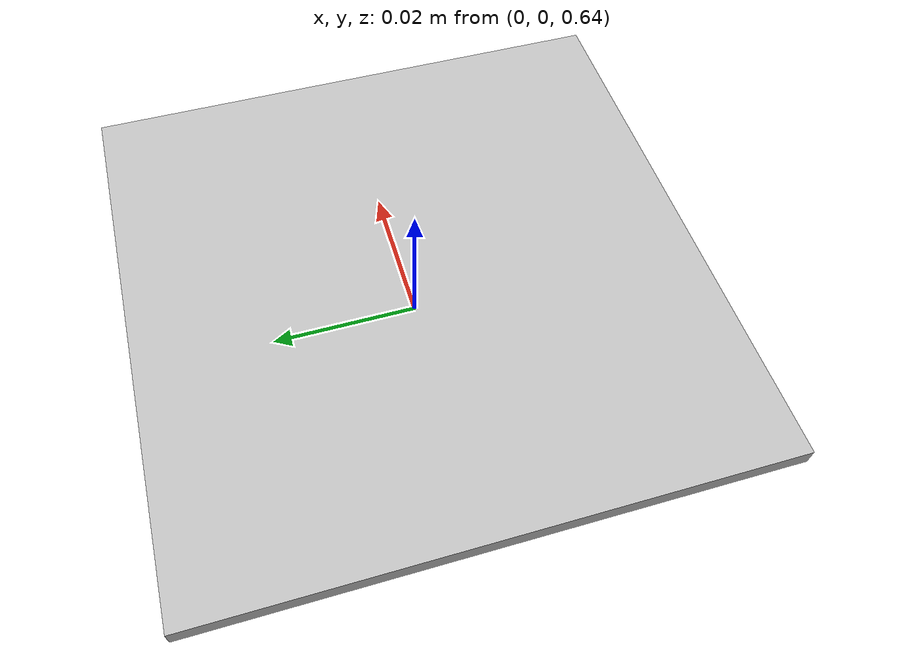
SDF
<?xml version="1.0" ?>
<sdf version="1.4">
  <model name="chessboard">
    <static>true</static>
    <pose>0 0 0.648 0 0 0</pose>
    <link name="link">
      <collision name="collision">
        <geometry>
          <mesh>
            <uri>model://chessboard/meshes/model.dae</uri>
            <scale>0.25 0.25 0.25</scale>
          </mesh>
        </geometry>
      </collision>
      <visual name="visual">
        <geometry>
          <mesh>
            <uri>model://chessboard/meshes/model.dae</uri>
            <scale>0.25 0.25 0.25</scale>
          </mesh>
        </geometry>
      </visual>
    </link>
  </model>
</sdf>
